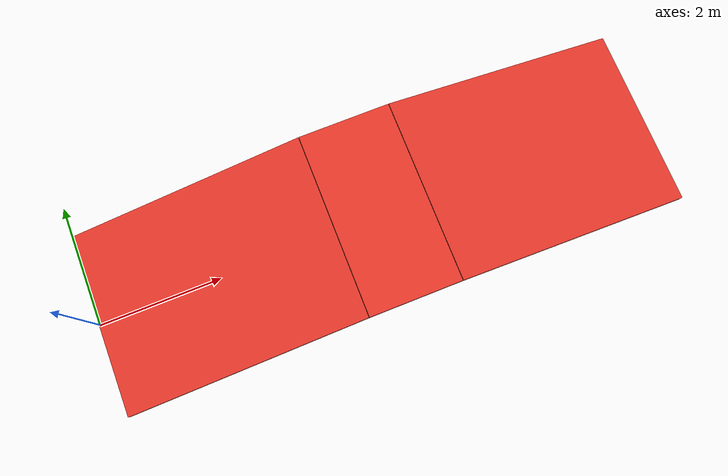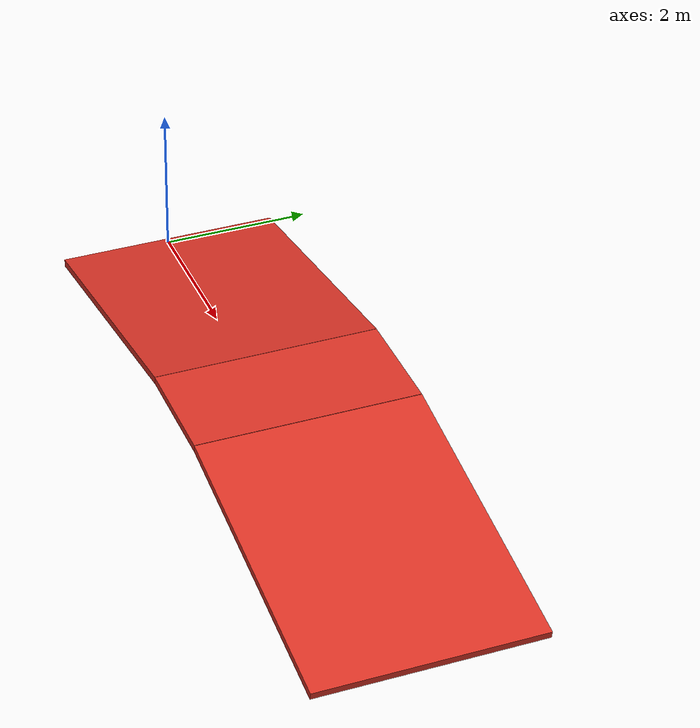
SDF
<?xml version="1.0" ?>
<sdf version="1.9">
  <model name="ramp_010">
    <static>true</static>
    <link name="link">

      <!-- 각도: 10.0도 / 경사면 길이: 4.0m / 높이(H)=0.6946m / 수평거리(D)=3.9392m -->

      <collision name="up_collision">
        <pose>1.9696 0 0.3473 0 -0.174533 0</pose>
        <geometry><box><size>4.0 3.0 0.1</size></box></geometry>
      </collision>
      <visual name="up_visual">
        <pose>1.9696 0 0.3473 0 -0.174533 0</pose>
        <geometry><box><size>4.0 3.0 0.1</size></box></geometry>
        <material><ambient>0.8 0.15 0.1 1</ambient><diffuse>0.85 0.2 0.15 1</diffuse></material>
      </visual>

      <collision name="flat_collision">
        <pose>4.6892 0 0.6946 0 0 0</pose>
        <geometry><box><size>1.5 3.0 0.1</size></box></geometry>
      </collision>
      <visual name="flat_visual">
        <pose>4.6892 0 0.6946 0 0 0</pose>
        <geometry><box><size>1.5 3.0 0.1</size></box></geometry>
        <material><ambient>0.8 0.15 0.1 1</ambient><diffuse>0.85 0.2 0.15 1</diffuse></material>
      </visual>

      <collision name="down_collision">
        <pose>7.4088 0 0.3473 0 0.174533 0</pose>
        <geometry><box><size>4.0 3.0 0.1</size></box></geometry>
      </collision>
      <visual name="down_visual">
        <pose>7.4088 0 0.3473 0 0.174533 0</pose>
        <geometry><box><size>4.0 3.0 0.1</size></box></geometry>
        <material><ambient>0.8 0.15 0.1 1</ambient><diffuse>0.85 0.2 0.15 1</diffuse></material>
      </visual>

    </link>
  </model>
</sdf>
